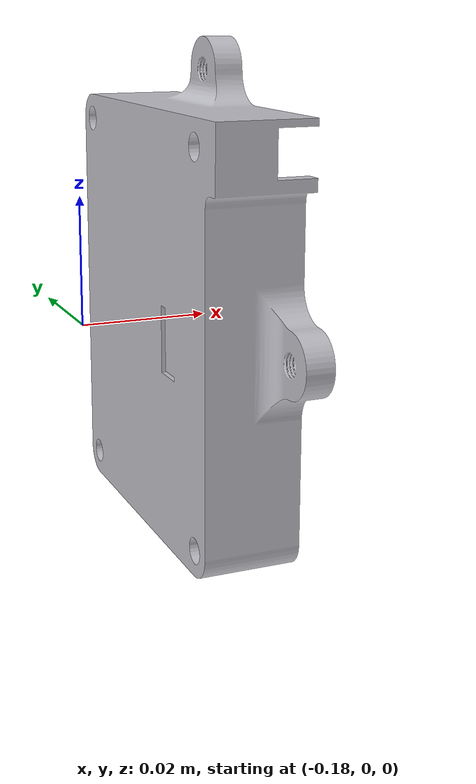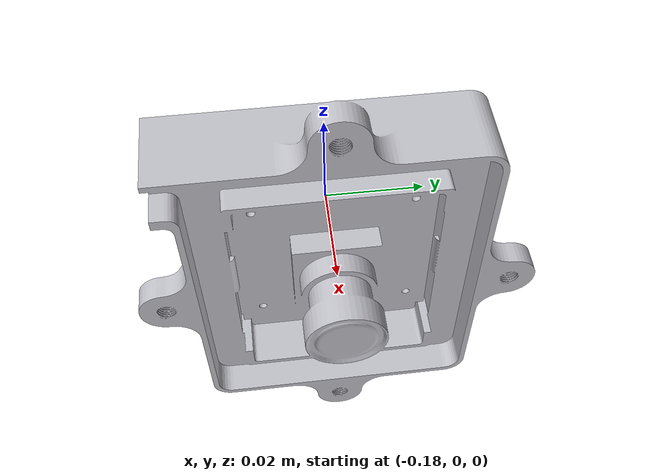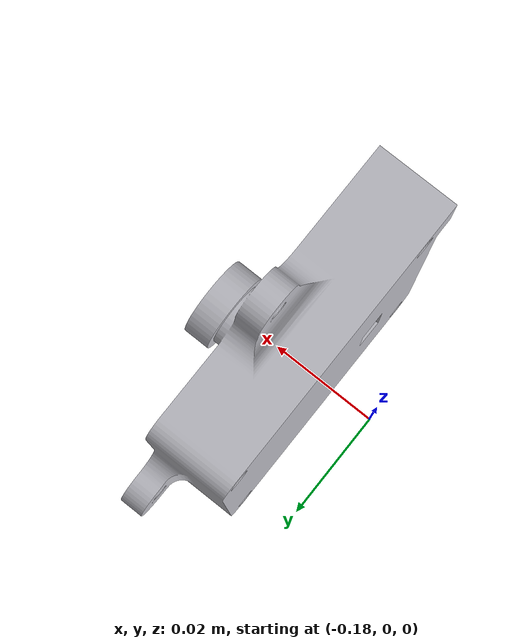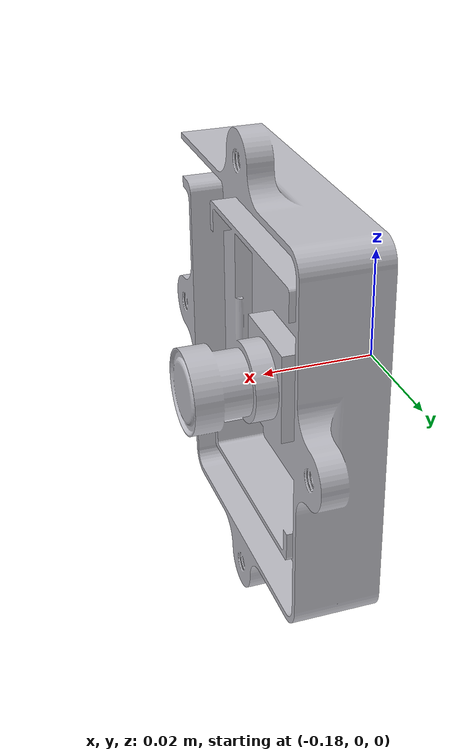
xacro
<?xml version="1.0" ?>
<robot name="NUSENSE" xmlns:xacro="http://www.ros.org/wiki/xacro">

<xacro:include filename="$(find NUSENSE_description)/urdf/materials.xacro" />
<xacro:include filename="$(find NUSENSE_description)/urdf/NUSENSE.trans" />
<xacro:include filename="$(find NUSENSE_description)/urdf/NUSENSE.gazebo" />
<link name="base_link">
  <inertial>
    <origin xyz="-0.16482238182188297 -0.0002961685858999756 0.00025788233645894493" rpy="0 0 0"/>
    <mass value="0.03501172063719372"/>
    <inertia ixx="2.3e-05" iyy="1.5e-05" izz="1e-05" ixy="-0.0" iyz="0.0" ixz="0.0"/>
  </inertial>
  <visual>
    <origin xyz="0 0 0" rpy="0 0 0"/>
    <geometry>
      <mesh filename="package://NUSENSE_description/meshes/base_link.stl" scale="0.001 0.001 0.001"/>
    </geometry>
    <material name="silver"/>
  </visual>
  <collision>
    <origin xyz="0 0 0" rpy="0 0 0"/>
    <geometry>
      <mesh filename="package://NUSENSE_description/meshes/base_link.stl" scale="0.001 0.001 0.001"/>
    </geometry>
  </collision>
</link>

</robot>

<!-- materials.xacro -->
<robot name="NUSENSE" xmlns:xacro="http://www.ros.org/wiki/xacro" >

<material name="mount_yellow">
  <color rgba="0.92549 0.76863 0.25098 0.8"/>
</material>

<material name="blackish">
  <color rgba="0.05882 0.05882 0.05098 0.71"/>
</material>

<material name="grayish">
  <color rgba="0.73725 0.69020 0.69020 0.71"/>
</material>

</robot>

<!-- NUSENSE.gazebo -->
<robot name="NUSENSE" xmlns:xacro="http://www.ros.org/wiki/xacro" >

<xacro:property name="body_color" value="Gazebo/Silver" />

<gazebo>
  <plugin name="control" filename="libgazebo_ros_control.so"/>
</gazebo>
<gazebo reference="base_link">
  <material>${body_color}</material>
  <mu1>0.2</mu1>
  <mu2>0.2</mu2>
  <selfCollide>true</selfCollide>
  <gravity>true</gravity>
</gazebo>

</robot>
